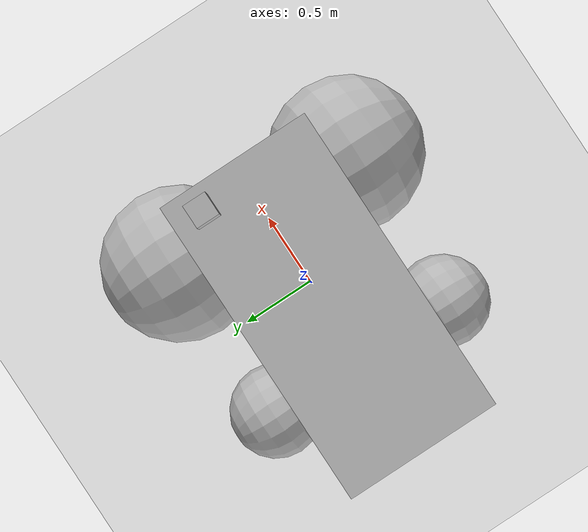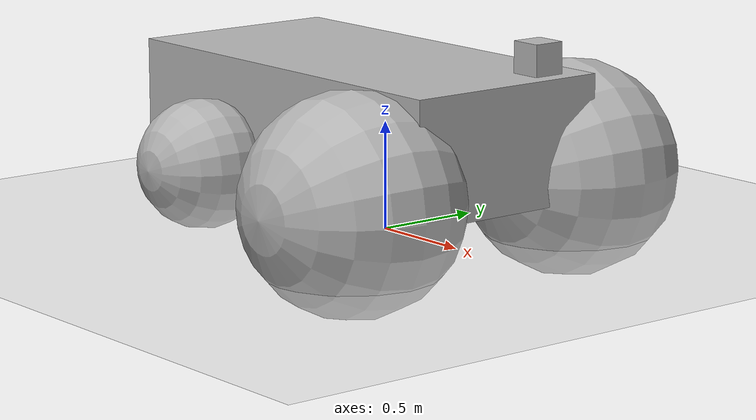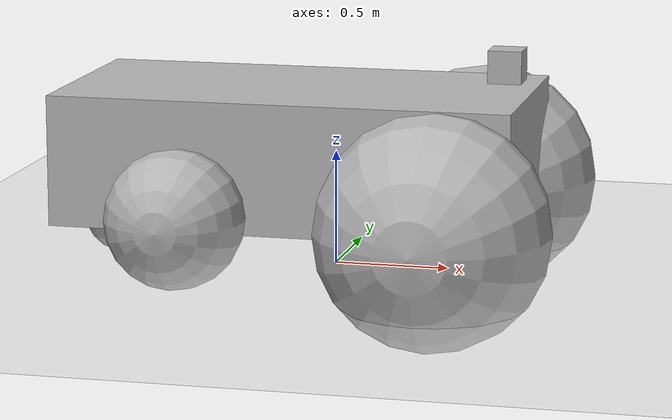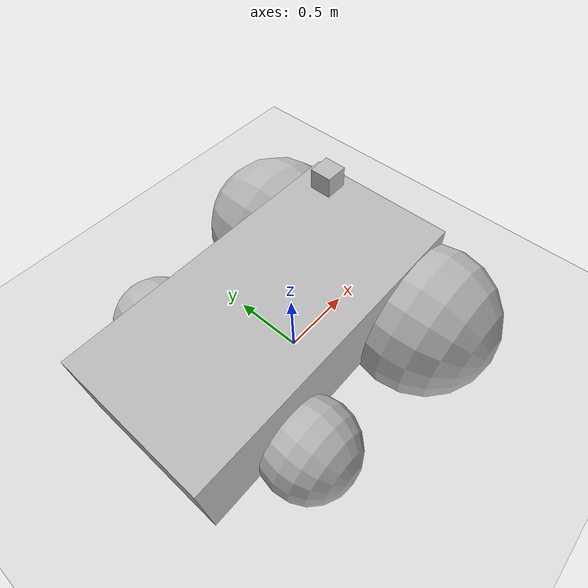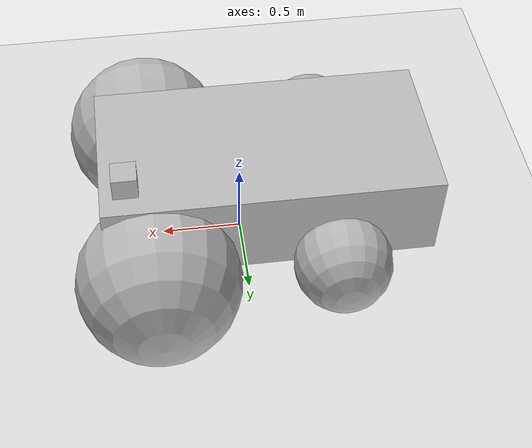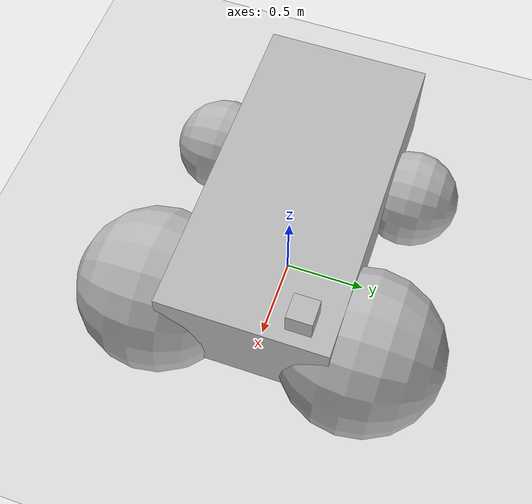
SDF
<?xml version="1.0"?>
  <sdf version="1.6">
    <world name="default">

      <include>
        <uri>model://ground_plane</uri>
      </include>

      <include>
        <uri>model://sun</uri>
      </include>

      <model name='vehicle'>
        <pose>0 0 0.325 0 -0 0</pose>

        <link name='chassis'>
          <pose>-0.151427 -0 0.175 0 -0 0</pose>
          <inertial>
            <mass>1.14395</mass>
            <inertia>
              <ixx>0.126164</ixx>
              <ixy>0</ixy>
              <ixz>0</ixz>
              <iyy>0.416519</iyy>
              <iyz>0</iyz>
              <izz>0.481014</izz>
            </inertia>
          </inertial>
          <visual name='visual'>
            <geometry>
              <box>
                <size>2.01142 1 0.568726</size>
              </box>
            </geometry>
          </visual>
          <collision name='collision'>
            <geometry>
              <box>
                <size>2.01142 1 0.568726</size>
              </box>
            </geometry>
          </collision>
        </link>

        <link name='left_wheel0'>
          <pose>0.554283 0.625029 -0.025 -1.5707 0 0</pose>
          <inertial>
            <mass>2</mass>
            <inertia>
              <ixx>0.145833</ixx>
              <ixy>0</ixy>
              <ixz>0</ixz>
              <iyy>0.145833</iyy>
              <iyz>0</iyz>
              <izz>0.125</izz>
            </inertia>
          </inertial>
          <visual name='visual'>
            <geometry>
              <sphere>
                <radius>0.5</radius>
              </sphere>
            </geometry>
          </visual>
          <collision name='collision'>
            <geometry>
              <sphere>
                <radius>0.5</radius>
              </sphere>
            </geometry>
            <surface>
              <friction>
                <ode>
                  <mu>1</mu>
                  <mu2>1</mu2>
                  <slip1>0</slip1>
                  <slip2>0</slip2>
                </ode>
              </friction>
              <contact>
                <ode>
                  <soft_cfm>0</soft_cfm>
                  <soft_erp>0.2</soft_erp>
                  <kp>1e+13</kp>
                  <kd>1</kd>
                  <max_vel>0.01</max_vel>
                  <min_depth>0.01</min_depth>
                </ode>
              </contact>
            </surface>
          </collision>
        </link>

        <link name='right_wheel0'>
          <pose>0.554282 -0.625029 -0.025 -1.5707 0 0</pose>
          <inertial>
            <mass>2</mass>
            <inertia>
              <ixx>0.145833</ixx>
              <ixy>0</ixy>
              <ixz>0</ixz>
              <iyy>0.145833</iyy>
              <iyz>0</iyz>
              <izz>0.125</izz>
            </inertia>
          </inertial>
          <visual name='visual'>
            <geometry>
              <sphere>
                <radius>0.5</radius>
              </sphere>
            </geometry>
          </visual>
          <collision name='collision'>
            <geometry>
              <sphere>
                <radius>0.5</radius>
              </sphere>
            </geometry>
            <surface>
              <friction>
                <ode>
                  <mu>1</mu>
                  <mu2>1</mu2>
                  <slip1>0</slip1>
                  <slip2>0</slip2>
                </ode>
              </friction>
              <contact>
                <ode>
                  <soft_cfm>0</soft_cfm>
                  <soft_erp>0.2</soft_erp>
                  <kp>1e+13</kp>
                  <kd>1</kd>
                  <max_vel>0.01</max_vel>
                  <min_depth>0.01</min_depth>
                </ode>
              </contact>
            </surface>
          </collision>
        </link>

        <link name='left_wheel1'>
          <pose>-0.554283 0.625029 -0.025 -1.5707 0 0</pose>
          <inertial>
            <mass>2</mass>
            <inertia>
              <ixx>0.145833</ixx>
              <ixy>0</ixy>
              <ixz>0</ixz>
              <iyy>0.145833</iyy>
              <iyz>0</iyz>
              <izz>0.125</izz>
            </inertia>
          </inertial>
          <visual name='visual'>
            <geometry>
              <sphere>
                <radius>0.3</radius>
              </sphere>
            </geometry>
          </visual>
          <collision name='collision'>
            <geometry>
              <sphere>
                <radius>0.3</radius>
              </sphere>
            </geometry>
            <surface>
              <friction>
                <ode>
                  <mu>1</mu>
                  <mu2>1</mu2>
                  <slip1>0</slip1>
                  <slip2>0</slip2>
                </ode>
              </friction>
              <contact>
                <ode>
                  <soft_cfm>0</soft_cfm>
                  <soft_erp>0.2</soft_erp>
                  <kp>1e+13</kp>
                  <kd>1</kd>
                  <max_vel>0.01</max_vel>
                  <min_depth>0.01</min_depth>
                </ode>
              </contact>
            </surface>
          </collision>
        </link>

        <link name='right_wheel1'>
          <pose>-0.554282 -0.625029 -0.025 -1.5707 0 0</pose>
          <inertial>
            <mass>2</mass>
            <inertia>
              <ixx>0.145833</ixx>
              <ixy>0</ixy>
              <ixz>0</ixz>
              <iyy>0.145833</iyy>
              <iyz>0</iyz>
              <izz>0.125</izz>
            </inertia>
          </inertial>
          <visual name='visual'>
            <geometry>
              <sphere>
                <radius>0.3</radius>
              </sphere>
            </geometry>
          </visual>
          <collision name='collision'>
            <geometry>
              <sphere>
                <radius>0.3</radius>
              </sphere>
            </geometry>
            <surface>
              <friction>
                <ode>
                  <mu>1</mu>
                  <mu2>1</mu2>
                  <slip1>0</slip1>
                  <slip2>0</slip2>
                </ode>
              </friction>
              <contact>
                <ode>
                  <soft_cfm>0</soft_cfm>
                  <soft_erp>0.2</soft_erp>
                  <kp>1e+13</kp>
                  <kd>1</kd>
                  <max_vel>0.01</max_vel>
                  <min_depth>0.01</min_depth>
                </ode>
              </contact>
            </surface>
          </collision>
        </link>

        <link name='caster'>
          <pose>-0.957138 -0 -0.125 0 -0 0</pose>
          <inertial>
            <mass>1</mass>
            <inertia>
              <ixx>0.1</ixx>
              <ixy>0</ixy>
              <ixz>0</ixz>
              <iyy>0.1</iyy>
              <iyz>0</iyz>
              <izz>0.1</izz>
            </inertia>
          </inertial>
          <visual name='visual'>
            <geometry>
              <sphere>
                <radius>0.2</radius>
              </sphere>
            </geometry>
          </visual>
          <collision name='collision'>
            <geometry>
              <sphere>
                <radius>0.2</radius>
              </sphere>
            </geometry>
          </collision>
        </link>
        <link name="camera_link">
  <collision name="collision-base">
          <pose>0 0 0 0 0 0</pose>
          <geometry>
            <box>
              <size>0.15 0.15 0.15</size>
            </box>
          </geometry>
        </collision>
        <pose>0.7 0.3 0.53 0 0 0</pose>

        <visual name="visual-base">
          <pose>0 0 0 0 0 0</pose>
          <geometry>
            <box>
              <size>0.15 0.15 0.15</size>
            </box>
          </geometry>
          <material>
            <name>red</name>
          </material>
        </visual>

        <inertial>
          <mass>1e-5</mass>
          <pose>0 0 0 0 0 0</pose>
          <inertia>
            <ixx>1e-6</ixx>
            <ixy>0</ixy>
            <ixz>0</ixz>
            <iyy>1e-6</iyy>
            <iyz>0</iyz>
            <izz>1e-6</izz>
          </inertia>
        </inertial>
    <sensor type="camera" name="camera1">
      <update_rate>30.0</update_rate>
      <camera name="head">
        <horizontal_fov>1.3962634</horizontal_fov>
        <image>
          <width>800</width>
          <height>800</height>
          <format>R8G8B8</format>
        </image>
        <clip>
          <near>0.02</near>
          <far>300</far>
        </clip>
        <noise>
          <type>gaussian</type>
          <!-- Noise is sampled independently per pixel on each frame.
               That pixel's noise value is added to each of its color
               channels, which at that point lie in the range [0,1]. -->
          <mean>0.0</mean>
          <stddev>0.007</stddev>
        </noise>
      </camera>
      <plugin name="camera_controller" filename="libgazebo_ros_camera.so">
        <alwaysOn>true</alwaysOn>
        <updateRate>0.0</updateRate>
        <cameraName>rrbot/camera1</cameraName>
        <imageTopicName>image_raw</imageTopicName>
        <cameraInfoTopicName>camera_info</cameraInfoTopicName>
        <frameName>camera_link</frameName>
        <hackBaseline>0.07</hackBaseline>
        <distortionK1>0.0</distortionK1>
        <distortionK2>0.0</distortionK2>
        <distortionK3>0.0</distortionK3>
        <distortionT1>0.0</distortionT1>
        <distortionT2>0.0</distortionT2>
      </plugin>
    </sensor>
  </link>

        <joint name='left_wheel_joint0' type='revolute'>
          <parent>chassis</parent>
          <child>left_wheel0</child>
          <axis>
            <xyz>0 0 1</xyz>
            <limit>
              <lower>-1.79769e+308</lower>
              <upper>1.79769e+308</upper>
            </limit>
          </axis>
        </joint>

        <joint name='right_wheel_joint0' type='revolute'>
          <parent>chassis</parent>
          <child>right_wheel0</child>
          <axis>
            <xyz>0 0 1</xyz>
            <limit>
              <lower>-1.79769e+308</lower>
              <upper>1.79769e+308</upper>
            </limit>
          </axis>
        </joint>

        <joint name='left_wheel_joint1' type='revolute'>
          <parent>chassis</parent>
          <child>left_wheel1</child>
          <axis>
            <xyz>0 0 1</xyz>
            <limit>
              <lower>-1.79769e+308</lower>
              <upper>1.79769e+308</upper>
            </limit>
          </axis>
        </joint>

        <joint name='right_wheel_joint1' type='revolute'>
          <parent>chassis</parent>
          <child>right_wheel1</child>
          <axis>
            <xyz>0 0 1</xyz>
            <limit>
              <lower>-1.79769e+308</lower>
              <upper>1.79769e+308</upper>
            </limit>
          </axis>
        </joint>

        <joint name='caster_wheel' type='ball'>
          <parent>chassis</parent>
          <child>caster</child>
        </joint>
        <joint name="camera_joint" type="fixed">
        <axis>
          <xyz>0 1 0</xyz>
        </axis>
        <pose>1 0 2 0 0 0</pose>
        <parent>chassis</parent>
        <child>camera_link</child>
      </joint>

        <plugin name='skid_steer_drive' filename='libgazebo_ros_diff_drive.so'>

          <ros>
            <namespace>/demo</namespace>
            <remapping>cmd_vel:=cmd_demo</remapping>
            <remapping>odom:=odom_demo</remapping>
          </ros>

          <!-- Number of wheel pairs -->
          <num_wheel_pairs>2</num_wheel_pairs>

          <!-- wheels0 -->
          <left_joint>left_wheel_joint0</left_joint>
          <right_joint>right_wheel_joint0</right_joint>

          <!-- wheels1-->
          <left_joint>left_wheel_joint1</left_joint>
          <right_joint>right_wheel_joint1</right_joint>

          <!-- kinematics -->
          <wheel_separation>1.25</wheel_separation>
          <wheel_separation>1.25</wheel_separation>

          <wheel_diameter>1.0</wheel_diameter>
          <wheel_diameter>0.6</wheel_diameter>

          <!-- limits -->
          <max_wheel_torque>20</max_wheel_torque>
          <max_wheel_acceleration>1.0</max_wheel_acceleration>

          <!-- output -->
          <publish_odom>true</publish_odom>
          <publish_odom_tf>true</publish_odom_tf>
          <publish_wheel_tf>true</publish_wheel_tf>

          <odometry_frame>odom_demo</odometry_frame>
          <robot_base_frame>chassis</robot_base_frame>

        </plugin>

      </model>

    </world>
  </sdf>
